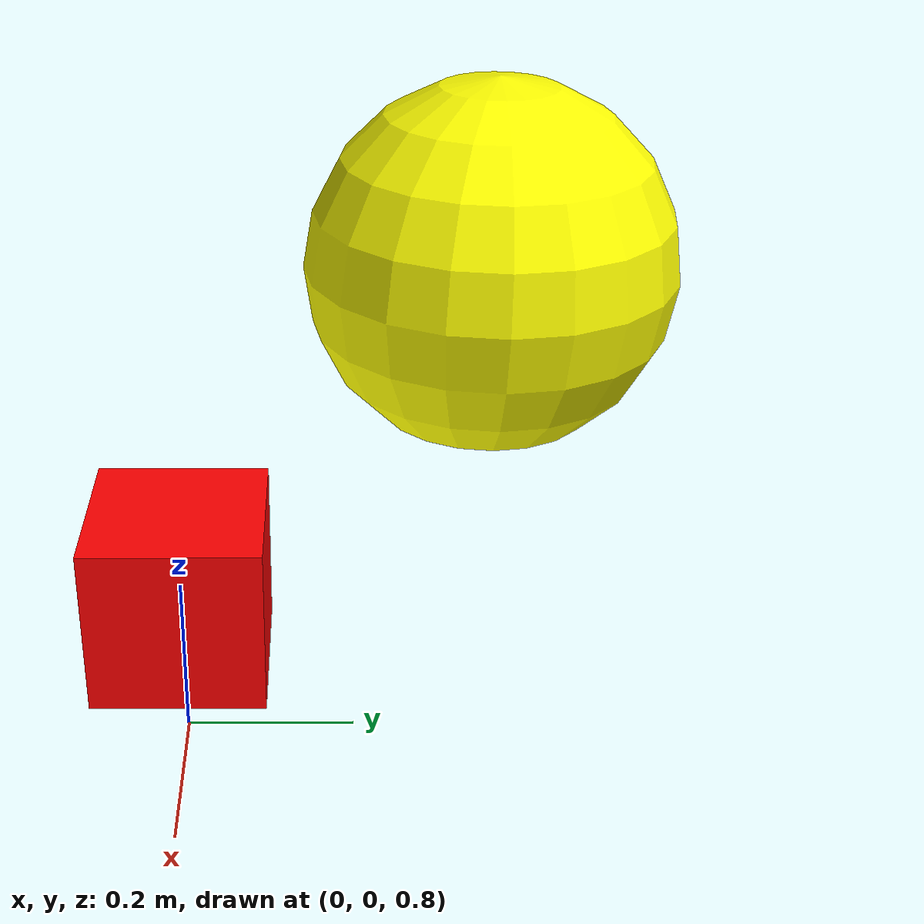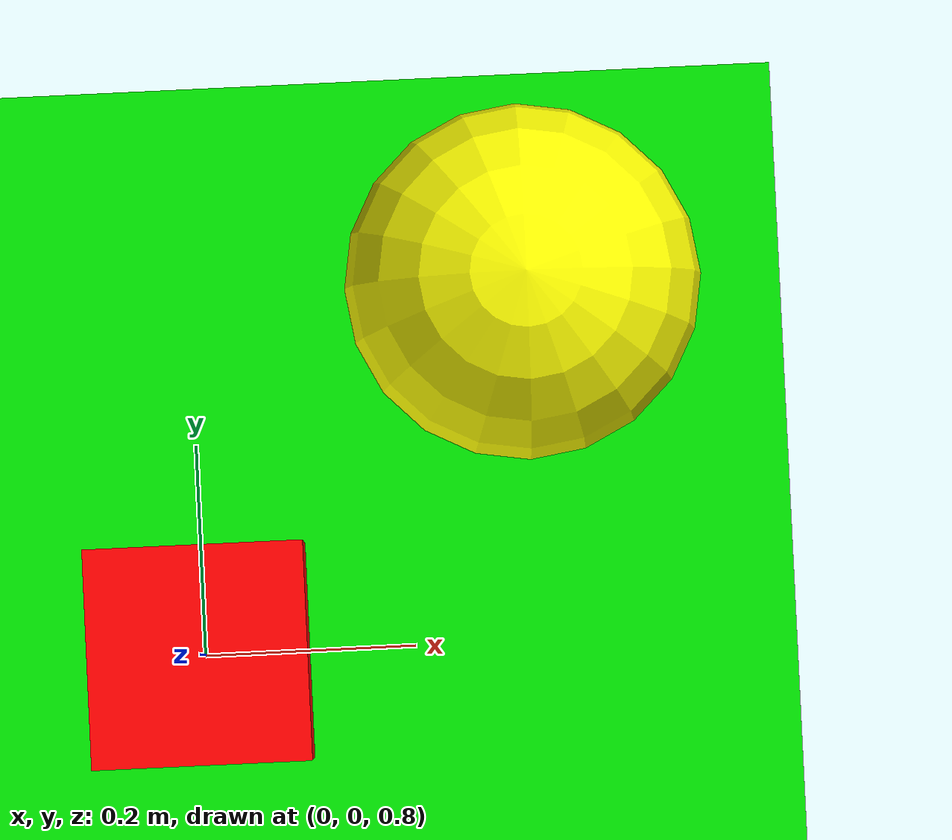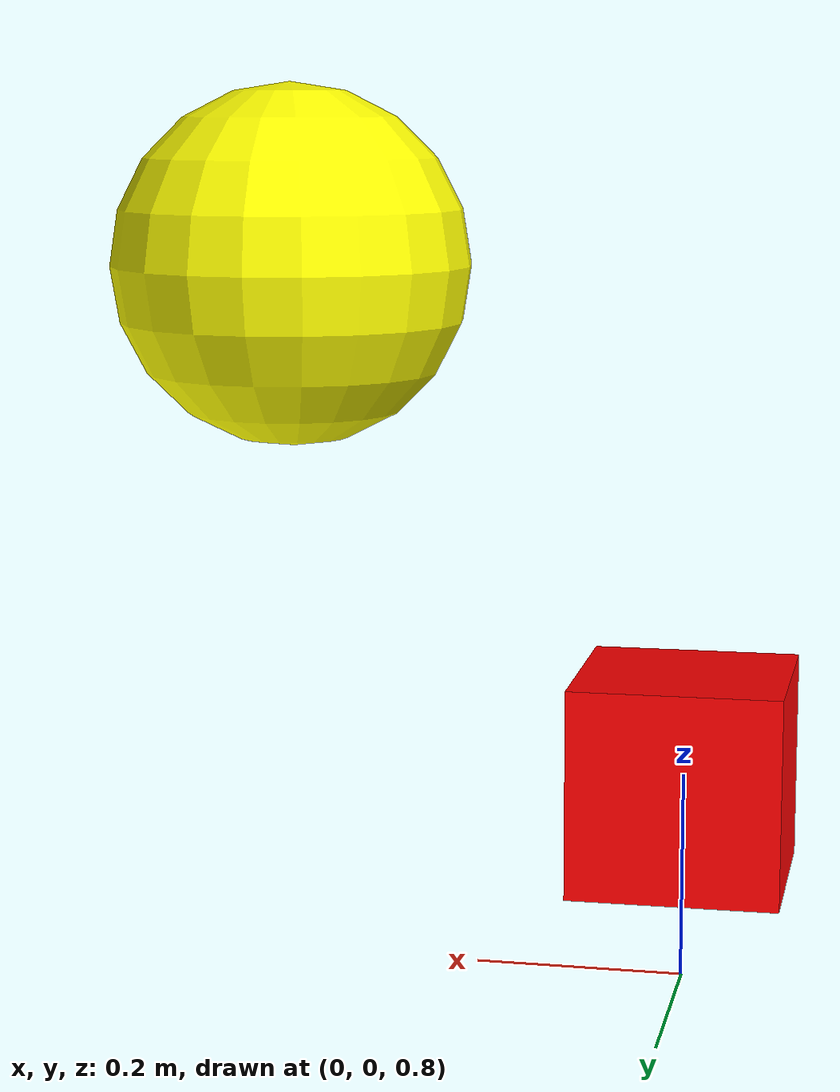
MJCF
<?xml version="1.0" encoding="UTF-8"?>
<mujoco model="TestMujoco">
    <worldbody>
        <light diffuse=".5 .5 .5" pos="0 0 3" dir="0 0 -1"/>
        <geom type="plane" size="10 1 0.1" rgba="0 0.9 0 1"/>
        <body pos="0 0 1">
            <joint type="free"/>
            <geom type="box" size="0.1 0.1 0.1" rgba="1 0 0 1"/>
        </body>
        <body pos="0.3 0.3 1.5">
            <joint type="free"/>
            <geom type="sphere" size="0.15" rgba="1 1 0 1"/>
        </body>
    </worldbody>
</mujoco>
